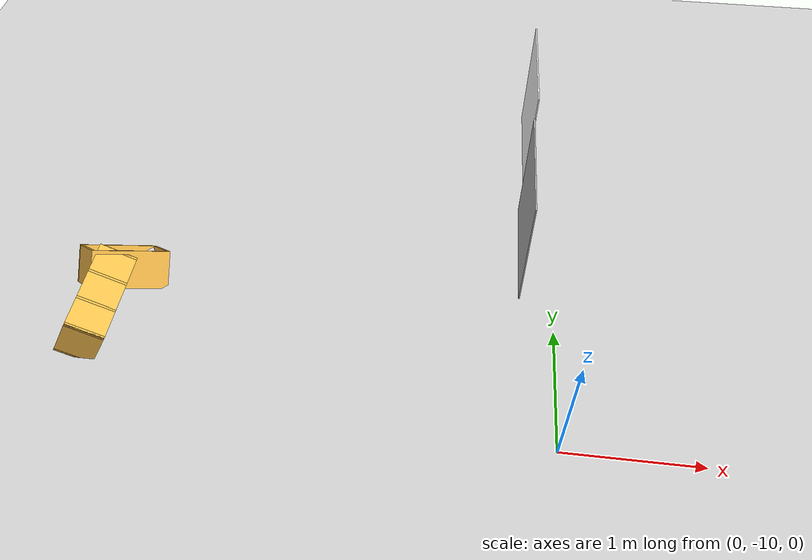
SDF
<sdf version="1.6">
 <world name="default">
  <model name="ground_plane">
   <static>1</static>
   <link name="link">
    <collision name="collision">
     <geometry><plane><normal>0 0 1</normal><size>100 100</size></plane></geometry>
     <surface><friction><ode><mu>100</mu><mu2>50</mu2></ode></friction></surface>
    </collision>
    <visual name="visual">
     <cast_shadows>0</cast_shadows>
     <geometry><plane><normal>0 0 1</normal><size>100 100</size></plane></geometry>
     <material>
      <script><uri>file://media/materials/scripts/gazebo.material</uri><name>Gazebo/Grey</name></script>
     </material>
    </visual>
   </link>
  </model>
  <model name="Wall_Cabinet_15x30_2">
   <pose>-3.54335 -9.24759 0 0 0.473353 0</pose>
   <link name="Wall_0">
    <pose>0 0.374 0.192 0 -0 0</pose>
    <inertial>
     <mass>0.9882</mass>
     <inertia><ixx>0.0072</ixx><iyy>0.0194</iyy><izz>0.0122</izz><ixy>0</ixy><ixz>0</ixz><iyz>0</iyz></inertia>
    </inertial>
    <collision name="Wall_0_Collision"><geometry><box><size>0.296 0.02 0.384</size></box></geometry></collision>
    <visual name="Wall_0_Visual">
     <geometry><box><size>0.296 0.02 0.384</size></box></geometry>
     <material>
      <script><uri>file://media/materials/scripts/gazebo.material</uri><name>Gazebo/Grey</name></script>
      <ambient>1 0.764706 0.305882 1</ambient>
     </material>
    </visual>
   </link>
   <joint name="0_2" type="fixed">
    <pose>0 0 0.192 0 -0 0</pose>
    <parent>Wall_2</parent>
    <child>Wall_0</child>
    <axis>
     <xyz>0 0 1</xyz>
     <use_parent_model_frame>0</use_parent_model_frame>
     <limit><lower>-1e+16</lower><upper>1e+16</upper></limit>
    </axis>
   </joint>
   <joint name="0_4" type="fixed">
    <pose>0 0 -0.192 0 -0 0</pose>
    <parent>Wall_4</parent>
    <child>Wall_0</child>
    <axis>
     <xyz>0 0 1</xyz>
     <use_parent_model_frame>0</use_parent_model_frame>
     <limit><lower>-1e+16</lower><upper>1e+16</upper></limit>
    </axis>
   </joint>
   <joint name="0_15" type="fixed">
    <pose>0.148 0 0 0 -0 0</pose>
    <parent>Wall_15</parent>
    <child>Wall_0</child>
    <axis>
     <xyz>1 0 0</xyz>
     <use_parent_model_frame>0</use_parent_model_frame>
     <limit><lower>-1e+16</lower><upper>1e+16</upper></limit>
    </axis>
   </joint>
   <link name="Wall_11">
    <pose>0 -0.132768 0.192 0 -0 0</pose>
    <inertial>
     <mass>0.9882</mass>
     <inertia><ixx>0.0072</ixx><iyy>0.0194</iyy><izz>0.0122</izz><ixy>0</ixy><ixz>0</ixz><iyz>0</iyz></inertia>
    </inertial>
    <collision name="Wall_11_Collision"><geometry><box><size>0.296 0.02 0.384</size></box></geometry></collision>
    <visual name="Wall_11_Visual">
     <geometry><box><size>0.296 0.02 0.384</size></box></geometry>
     <material>
      <script><uri>file://media/materials/scripts/gazebo.material</uri><name>Gazebo/Grey</name></script>
      <ambient>1 0.764706 0.305882 1</ambient>
     </material>
    </visual>
   </link>
   <joint name="11_2" type="fixed">
    <pose>0 0 0.192 0 -0 0</pose>
    <parent>Wall_2</parent>
    <child>Wall_11</child>
    <axis>
     <xyz>0 0 1</xyz>
     <use_parent_model_frame>0</use_parent_model_frame>
     <limit><lower>-1e+16</lower><upper>1e+16</upper></limit>
    </axis>
   </joint>
   <joint name="11_4" type="fixed">
    <pose>0 0 -0.192 0 -0 0</pose>
    <parent>Wall_4</parent>
    <child>Wall_11</child>
    <axis>
     <xyz>0 0 1</xyz>
     <use_parent_model_frame>0</use_parent_model_frame>
     <limit><lower>-1e+16</lower><upper>1e+16</upper></limit>
    </axis>
   </joint>
   <joint name="11_15" type="fixed">
    <pose>0.148 0 0 0 -0 0</pose>
    <parent>Wall_15</parent>
    <child>Wall_11</child>
    <axis>
     <xyz>1 0 0</xyz>
     <use_parent_model_frame>0</use_parent_model_frame>
     <limit><lower>-1e+16</lower><upper>1e+16</upper></limit>
    </axis>
   </joint>
   <link name="Wall_15">
    <pose>0.138 0 0.19 0 -0 0</pose>
    <inertial>
     <mass>2.5241</mass>
     <inertia><ixx>0.0305</ixx><iyy>0.1229</iyy><izz>0.1532</izz><ixy>0</ixy><ixz>0</ixz><iyz>0</iyz></inertia>
    </inertial>
    <collision name="Wall_15_Collision"><geometry><box><size>0.02 0.764 0.38</size></box></geometry></collision>
    <visual name="Wall_15_Visual">
     <geometry><box><size>0.02 0.764 0.38</size></box></geometry>
     <material>
      <script><uri>file://media/materials/scripts/gazebo.material</uri><name>Gazebo/Grey</name></script>
      <ambient>1 0.764706 0.305882 1</ambient>
     </material>
    </visual>
   </link>
   <joint name="15_2" type="fixed">
    <pose>0 0 0.19 0 -0 0</pose>
    <parent>Wall_2</parent>
    <child>Wall_15</child>
    <axis>
     <xyz>0 0 1</xyz>
     <use_parent_model_frame>0</use_parent_model_frame>
     <limit><lower>-1e+16</lower><upper>1e+16</upper></limit>
    </axis>
   </joint>
   <joint name="15_4" type="fixed">
    <pose>0 0 -0.19 0 -0 0</pose>
    <parent>Wall_4</parent>
    <child>Wall_15</child>
    <axis>
     <xyz>0 0 1</xyz>
     <use_parent_model_frame>0</use_parent_model_frame>
     <limit><lower>-1e+16</lower><upper>1e+16</upper></limit>
    </axis>
   </joint>
   <link name="Wall_2">
    <pose>0 0 0.374 0 -0 0</pose>
    <inertial>
     <mass>1.9765</mass>
     <inertia><ixx>0.0145</ixx><iyy>0.1116</iyy><izz>0.0972</izz><ixy>0</ixy><ixz>0</ixz><iyz>0</iyz></inertia>
    </inertial>
    <collision name="Wall_2_Collision"><geometry><box><size>0.296 0.768 0.02</size></box></geometry></collision>
    <visual name="Wall_2_Visual">
     <geometry><box><size>0.296 0.768 0.02</size></box></geometry>
     <material>
      <script><uri>file://media/materials/scripts/gazebo.material</uri><name>Gazebo/Grey</name></script>
      <ambient>1 0.764706 0.305882 1</ambient>
     </material>
    </visual>
   </link>
   <link name="Wall_4">
    <pose>0 0 0.01 0 -0 0</pose>
    <inertial>
     <mass>1.9765</mass>
     <inertia><ixx>0.0145</ixx><iyy>0.1116</iyy><izz>0.0972</izz><ixy>0</ixy><ixz>0</ixz><iyz>0</iyz></inertia>
    </inertial>
    <collision name="Wall_4_Collision"><geometry><box><size>0.296 0.768 0.02</size></box></geometry></collision>
    <visual name="Wall_4_Visual">
     <geometry><box><size>0.296 0.768 0.02</size></box></geometry>
     <material>
      <script><uri>file://media/materials/scripts/gazebo.material</uri><name>Gazebo/Grey</name></script>
      <ambient>1 0.764706 0.305882 1</ambient>
     </material>
    </visual>
    <pose>-0.181124 0 0 0 0 -1.5708</pose>
   </link>
   <link name="Wall_6">
    <pose>0 -0.374 0.192 0 -0 0</pose>
    <inertial>
     <mass>0.9882</mass>
     <inertia><ixx>0.0072</ixx><iyy>0.0194</iyy><izz>0.0122</izz><ixy>0</ixy><ixz>0</ixz><iyz>0</iyz></inertia>
    </inertial>
    <collision name="Wall_6_Collision"><geometry><box><size>0.296 0.02 0.384</size></box></geometry></collision>
    <visual name="Wall_6_Visual">
     <geometry><box><size>0.296 0.02 0.384</size></box></geometry>
     <material>
      <script><uri>file://media/materials/scripts/gazebo.material</uri><name>Gazebo/Grey</name></script>
      <ambient>1 0.764706 0.305882 1</ambient>
     </material>
    </visual>
   </link>
   <joint name="6_2" type="fixed">
    <pose>0 0 0.192 0 -0 0</pose>
    <parent>Wall_2</parent>
    <child>Wall_6</child>
    <axis>
     <xyz>0 0 1</xyz>
     <use_parent_model_frame>0</use_parent_model_frame>
     <limit><lower>-1e+16</lower><upper>1e+16</upper></limit>
    </axis>
   </joint>
   <joint name="6_4" type="fixed">
    <pose>0 0 -0.192 0 -0 0</pose>
    <parent>Wall_4</parent>
    <child>Wall_6</child>
    <axis>
     <xyz>0 0 1</xyz>
     <use_parent_model_frame>0</use_parent_model_frame>
     <limit><lower>-1e+16</lower><upper>1e+16</upper></limit>
    </axis>
   </joint>
   <joint name="6_15" type="fixed">
    <pose>0.148 0 0 0 -0 0</pose>
    <parent>Wall_15</parent>
    <child>Wall_6</child>
    <axis>
     <xyz>1 0 0</xyz>
     <use_parent_model_frame>0</use_parent_model_frame>
     <limit><lower>-1e+16</lower><upper>1e+16</upper></limit>
    </axis>
   </joint>
   <link name="Wall_8">
    <pose>0 0.120833 0.192 0 -0 0</pose>
    <inertial>
     <mass>0.9882</mass>
     <inertia><ixx>0.0072</ixx><iyy>0.0194</iyy><izz>0.0122</izz><ixy>0</ixy><ixz>0</ixz><iyz>0</iyz></inertia>
    </inertial>
    <collision name="Wall_8_Collision"><geometry><box><size>0.296 0.02 0.384</size></box></geometry></collision>
    <visual name="Wall_8_Visual">
     <geometry><box><size>0.296 0.02 0.384</size></box></geometry>
     <material>
      <script><uri>file://media/materials/scripts/gazebo.material</uri><name>Gazebo/Grey</name></script>
      <ambient>1 0.764706 0.305882 1</ambient>
     </material>
    </visual>
   </link>
   <joint name="8_2" type="fixed">
    <pose>0 0 0.192 0 -0 0</pose>
    <parent>Wall_2</parent>
    <child>Wall_8</child>
    <axis>
     <xyz>0 0 1</xyz>
     <use_parent_model_frame>0</use_parent_model_frame>
     <limit><lower>-1e+16</lower><upper>1e+16</upper></limit>
    </axis>
   </joint>
   <joint name="8_4" type="fixed">
    <pose>0 0 -0.192 0 -0 0</pose>
    <parent>Wall_4</parent>
    <child>Wall_8</child>
    <axis>
     <xyz>0 0 1</xyz>
     <use_parent_model_frame>0</use_parent_model_frame>
     <limit><lower>-1e+16</lower><upper>1e+16</upper></limit>
    </axis>
   </joint>
   <joint name="8_15" type="fixed">
    <pose>0.148 0 0 0 -0 0</pose>
    <parent>Wall_15</parent>
    <child>Wall_8</child>
    <axis>
     <xyz>1 0 0</xyz>
     <use_parent_model_frame>0</use_parent_model_frame>
     <limit><lower>-1e+16</lower><upper>1e+16</upper></limit>
    </axis>
   </joint>
   <static>1</static>
  </model>
  <model name="Wall_Cabinet_24x15M_0">
   <link name="Wall_41">
    <pose>0 0 0.01 0 -0 0</pose>
    <inertial>
     <mass>1.4983</mass>
     <inertia><ixx>0.011</ixx><iyy>0.0571</iyy><izz>0.0462</izz><ixy>0</ixy><ixz>0</ixz><iyz>0</iyz></inertia>
    </inertial>
    <collision name="Wall_41_Collision"><geometry><box><size>0.608 0.296 0.02</size></box></geometry></collision>
    <visual name="Wall_41_Visual">
     <geometry><box><size>0.608 0.296 0.02</size></box></geometry>
     <material>
      <script><uri>file://media/materials/scripts/gazebo.material</uri><name>Gazebo/Grey</name></script>
      <ambient>1 0.764706 0.305882 1</ambient>
     </material>
    </visual>
    <pose>0.000184 0.181953 0 0 -0 0</pose>
   </link>
   <joint name="41_43" type="fixed">
    <pose>-0.304 0 0 0 -0 0</pose>
    <parent>Wall_43</parent>
    <child>Wall_41</child>
    <axis>
     <xyz>0 0 1</xyz>
     <use_parent_model_frame>0</use_parent_model_frame>
     <limit><lower>-1e+16</lower><upper>1e+16</upper></limit>
    </axis>
   </joint>
   <joint name="41_45" type="fixed">
    <pose>0.304 0 0 0 -0 0</pose>
    <parent>Wall_45</parent>
    <child>Wall_41</child>
    <axis>
     <xyz>0 0 1</xyz>
     <use_parent_model_frame>0</use_parent_model_frame>
     <limit><lower>-1e+16</lower><upper>1e+16</upper></limit>
    </axis>
   </joint>
   <joint name="41_49" type="fixed">
    <pose>0 -0.148 0 0 -0 0</pose>
    <parent>Wall_49</parent>
    <child>Wall_41</child>
    <axis>
     <xyz>0 0 1</xyz>
     <use_parent_model_frame>0</use_parent_model_frame>
     <limit><lower>-1e+16</lower><upper>1e+16</upper></limit>
    </axis>
   </joint>
   <link name="Wall_43">
    <pose>-0.294 0 0.192 0 -0 0</pose>
    <inertial>
     <mass>0.9463</mass>
     <inertia><ixx>0.0069</ixx><iyy>0.0185</iyy><izz>0.0117</izz><ixy>0</ixy><ixz>0</ixz><iyz>0</iyz></inertia>
    </inertial>
    <collision name="Wall_43_Collision"><geometry><box><size>0.02 0.296 0.384</size></box></geometry></collision>
    <visual name="Wall_43_Visual">
     <geometry><box><size>0.02 0.296 0.384</size></box></geometry>
     <material>
      <script><uri>file://media/materials/scripts/gazebo.material</uri><name>Gazebo/Grey</name></script>
      <ambient>1 0.764706 0.305882 1</ambient>
     </material>
    </visual>
   </link>
   <link name="Wall_45">
    <pose>0.294 0 0.192 0 -0 0</pose>
    <inertial>
     <mass>0.9463</mass>
     <inertia><ixx>0.0069</ixx><iyy>0.0185</iyy><izz>0.0117</izz><ixy>0</ixy><ixz>0</ixz><iyz>0</iyz></inertia>
    </inertial>
    <collision name="Wall_45_Collision"><geometry><box><size>0.02 0.296 0.384</size></box></geometry></collision>
    <visual name="Wall_45_Visual">
     <geometry><box><size>0.02 0.296 0.384</size></box></geometry>
     <material>
      <script><uri>file://media/materials/scripts/gazebo.material</uri><name>Gazebo/Grey</name></script>
      <ambient>1 0.764706 0.305882 1</ambient>
     </material>
    </visual>
   </link>
   <link name="Wall_47">
    <pose>0 0 0.374 0 -0 0</pose>
    <inertial>
     <mass>1.4983</mass>
     <inertia><ixx>0.011</ixx><iyy>0.0571</iyy><izz>0.0462</izz><ixy>0</ixy><ixz>0</ixz><iyz>0</iyz></inertia>
    </inertial>
    <collision name="Wall_47_Collision"><geometry><box><size>0.608 0.296 0.02</size></box></geometry></collision>
    <visual name="Wall_47_Visual">
     <geometry><box><size>0.608 0.296 0.02</size></box></geometry>
     <material>
      <script><uri>file://media/materials/scripts/gazebo.material</uri><name>Gazebo/Grey</name></script>
      <ambient>1 0.764706 0.305882 1</ambient>
     </material>
    </visual>
   </link>
   <joint name="47_43" type="fixed">
    <pose>-0.304 0 0 0 -0 0</pose>
    <parent>Wall_43</parent>
    <child>Wall_47</child>
    <axis>
     <xyz>0 0 1</xyz>
     <use_parent_model_frame>0</use_parent_model_frame>
     <limit><lower>-1e+16</lower><upper>1e+16</upper></limit>
    </axis>
   </joint>
   <joint name="47_45" type="fixed">
    <pose>0.304 0 0 0 -0 0</pose>
    <parent>Wall_45</parent>
    <child>Wall_47</child>
    <axis>
     <xyz>0 0 1</xyz>
     <use_parent_model_frame>0</use_parent_model_frame>
     <limit><lower>-1e+16</lower><upper>1e+16</upper></limit>
    </axis>
   </joint>
   <joint name="47_49" type="fixed">
    <pose>0 -0.148 0 0 -0 0</pose>
    <parent>Wall_49</parent>
    <child>Wall_47</child>
    <axis>
     <xyz>0 0 1</xyz>
     <use_parent_model_frame>0</use_parent_model_frame>
     <limit><lower>-1e+16</lower><upper>1e+16</upper></limit>
    </axis>
   </joint>
   <link name="Wall_49">
    <pose>0 -0.138 0.19 0 -0 0</pose>
    <inertial>
     <mass>1.9108</mass>
     <inertia><ixx>0.0231</ixx><iyy>0.0582</iyy><izz>0.0811</izz><ixy>0</ixy><ixz>0</ixz><iyz>0</iyz></inertia>
    </inertial>
    <collision name="Wall_49_Collision"><geometry><box><size>0.604 0.02 0.38</size></box></geometry></collision>
    <visual name="Wall_49_Visual">
     <geometry><box><size>0.604 0.02 0.38</size></box></geometry>
     <material>
      <script><uri>file://media/materials/scripts/gazebo.material</uri><name>Gazebo/Grey</name></script>
      <ambient>1 0.764706 0.305882 1</ambient>
     </material>
    </visual>
   </link>
   <joint name="49_43" type="fixed">
    <pose>-0.302 0 0 0 -0 0</pose>
    <parent>Wall_41</parent>
    <child>Wall_49</child>
    <axis>
     <xyz>0 1 0</xyz>
     <use_parent_model_frame>0</use_parent_model_frame>
     <limit><lower>-1e+16</lower><upper>1e+16</upper></limit>
    </axis>
   </joint>
   <joint name="49_45" type="fixed">
    <pose>0.302 0 0 0 -0 0</pose>
    <parent>Wall_45</parent>
    <child>Wall_49</child>
    <axis>
     <xyz>0 1 0</xyz>
     <use_parent_model_frame>0</use_parent_model_frame>
     <limit><lower>-1e+16</lower><upper>1e+16</upper></limit>
    </axis>
   </joint>
   <static>1</static>
   <pose>-3.51303 -8.70948 0 0.929942 0.424853 0.504855</pose>
  </model>
  <model name="electric_plug_4_M_0">
   <link name="link_0">
    <pose>4e-06 0 0 0 -0 0</pose>
    <inertial>
     <mass>1</mass>
     <inertia>
      <ixx>0.166667</ixx>
      <ixy>0</ixy>
      <ixz>0</ixz>
      <iyy>0.166667</iyy>
      <iyz>0</iyz>
      <izz>0.166667</izz>
     </inertia>
    </inertial>
    <visual name="visual">
     <geometry><box><size>0.01 1 1</size></box></geometry>
     <material>
      <lighting>1</lighting>
      <script>
       <uri>model://electric_plug_4_M/materials/scripts</uri>
       <uri>model://electric_plug_4_M/materials/textures</uri>
       <name>Electric/Plug4M</name>
      </script>
      <ambient>0.3 0.3 0.3 1</ambient>
      <diffuse>0.7 0.7 0.7 1</diffuse>
      <specular>0.01 0.01 0.01 1</specular>
      <emissive>1 1 1 1</emissive>
     </material>
     <cast_shadows>0</cast_shadows>
    </visual>
    <collision name="collision">
     <geometry><box><size>0.01 1 1</size></box></geometry>
     <surface>
      <friction>
       <ode><mu>1</mu><mu2>1</mu2><fdir1>0 0 0</fdir1><slip1>0</slip1><slip2>0</slip2></ode>
       <torsional>
        <coefficient>1</coefficient>
        <patch_radius>0</patch_radius>
        <surface_radius>0</surface_radius>
        <use_patch_radius>1</use_patch_radius>
        <ode><slip>0</slip></ode>
       </torsional>
      </friction>
      <bounce><restitution_coefficient>0</restitution_coefficient><threshold>1e+06</threshold></bounce>
      <contact>
       <collide_without_contact>0</collide_without_contact>
       <collide_without_contact_bitmask>1</collide_without_contact_bitmask>
       <collide_bitmask>1</collide_bitmask>
       <ode>
        <soft_cfm>0</soft_cfm>
        <soft_erp>0.2</soft_erp>
        <kp>1e+13</kp>
        <kd>1</kd>
        <max_vel>0.01</max_vel>
        <min_depth>0</min_depth>
       </ode>
       <bullet>
        <split_impulse>1</split_impulse>
        <split_impulse_penetration_threshold>-0.01</split_impulse_penetration_threshold>
        <soft_cfm>0</soft_cfm>
        <soft_erp>0.2</soft_erp>
        <kp>1e+13</kp>
        <kd>1</kd>
       </bullet>
      </contact>
     </surface>
    </collision>
   </link>
   <static>0</static>
   <pose>-0.259725 -8.20241 0.5 0 -6e-06 0</pose>
  </model>
  <model name="fire_1">
   <link name="link_0">
    <pose>4e-06 0 0 0 -0 0</pose>
    <inertial>
     <mass>1</mass>
     <inertia>
      <ixx>0.166667</ixx>
      <ixy>0</ixy>
      <ixz>0</ixz>
      <iyy>0.166667</iyy>
      <iyz>0</iyz>
      <izz>0.166667</izz>
     </inertia>
    </inertial>
    <visual name="visual">
     <geometry><box><size>0.01 1 1</size></box></geometry>
     <material>
      <lighting>1</lighting>
      <script>
       <uri>model://fire_1/materials/scripts</uri>
       <uri>model://fire_1/materials/textures</uri>
       <name>fire/fire1</name>
      </script>
      <ambient>1 1 1 1</ambient>
      <diffuse>1 1 1 1</diffuse>
      <specular>0.01 0.01 0.01 1</specular>
      <emissive>1 1 1 1</emissive>
     </material>
     <cast_shadows>0</cast_shadows>
    </visual>
    <collision name="collision">
     <geometry><box><size>0.01 1 1</size></box></geometry>
     <surface>
      <friction>
       <ode><mu>1</mu><mu2>1</mu2><fdir1>0 0 0</fdir1><slip1>0</slip1><slip2>0</slip2></ode>
       <torsional>
        <coefficient>1</coefficient>
        <patch_radius>0</patch_radius>
        <surface_radius>0</surface_radius>
        <use_patch_radius>1</use_patch_radius>
        <ode><slip>0</slip></ode>
       </torsional>
      </friction>
      <bounce><restitution_coefficient>0</restitution_coefficient><threshold>1e+06</threshold></bounce>
      <contact>
       <collide_without_contact>0</collide_without_contact>
       <collide_without_contact_bitmask>1</collide_without_contact_bitmask>
       <collide_bitmask>1</collide_bitmask>
       <ode>
        <soft_cfm>0</soft_cfm>
        <soft_erp>0.2</soft_erp>
        <kp>1e+13</kp>
        <kd>1</kd>
        <max_vel>0.01</max_vel>
        <min_depth>0</min_depth>
       </ode>
       <bullet>
        <split_impulse>1</split_impulse>
        <split_impulse_penetration_threshold>-0.01</split_impulse_penetration_threshold>
        <soft_cfm>0</soft_cfm>
        <soft_erp>0.2</soft_erp>
        <kp>1e+13</kp>
        <kd>1</kd>
       </bullet>
      </contact>
     </surface>
    </collision>
   </link>
   <static>0</static>
   <pose>-0.225746 -6.95391 0.5 -0 -3e-06 0.007117</pose>
  </model>
 </world>
</sdf>
